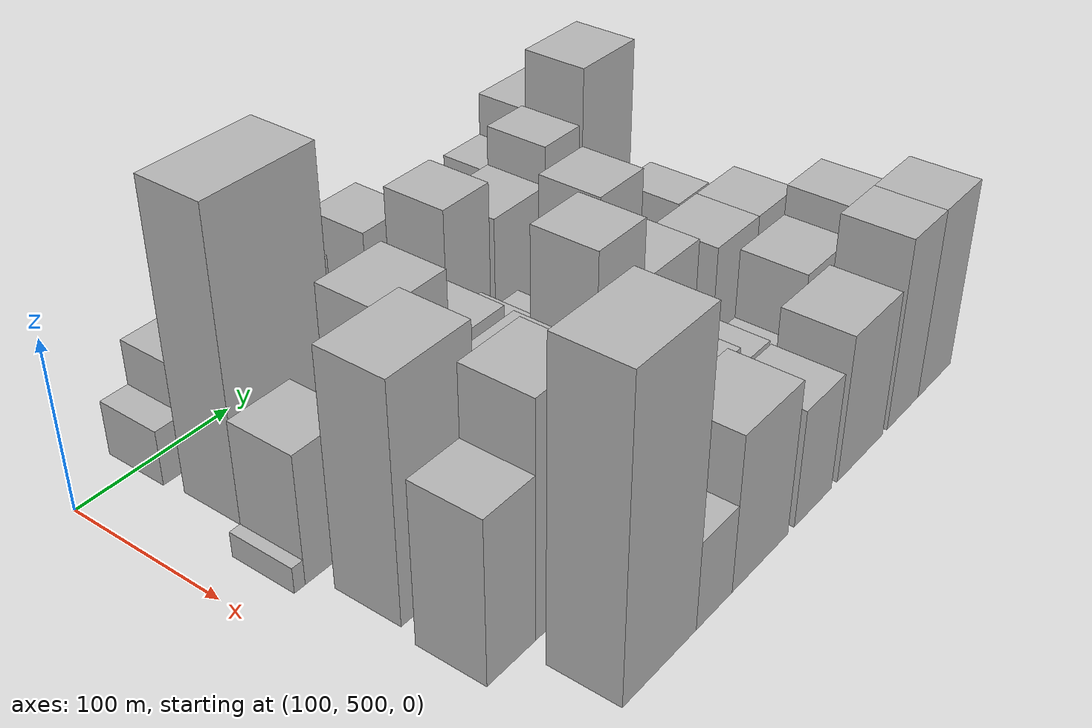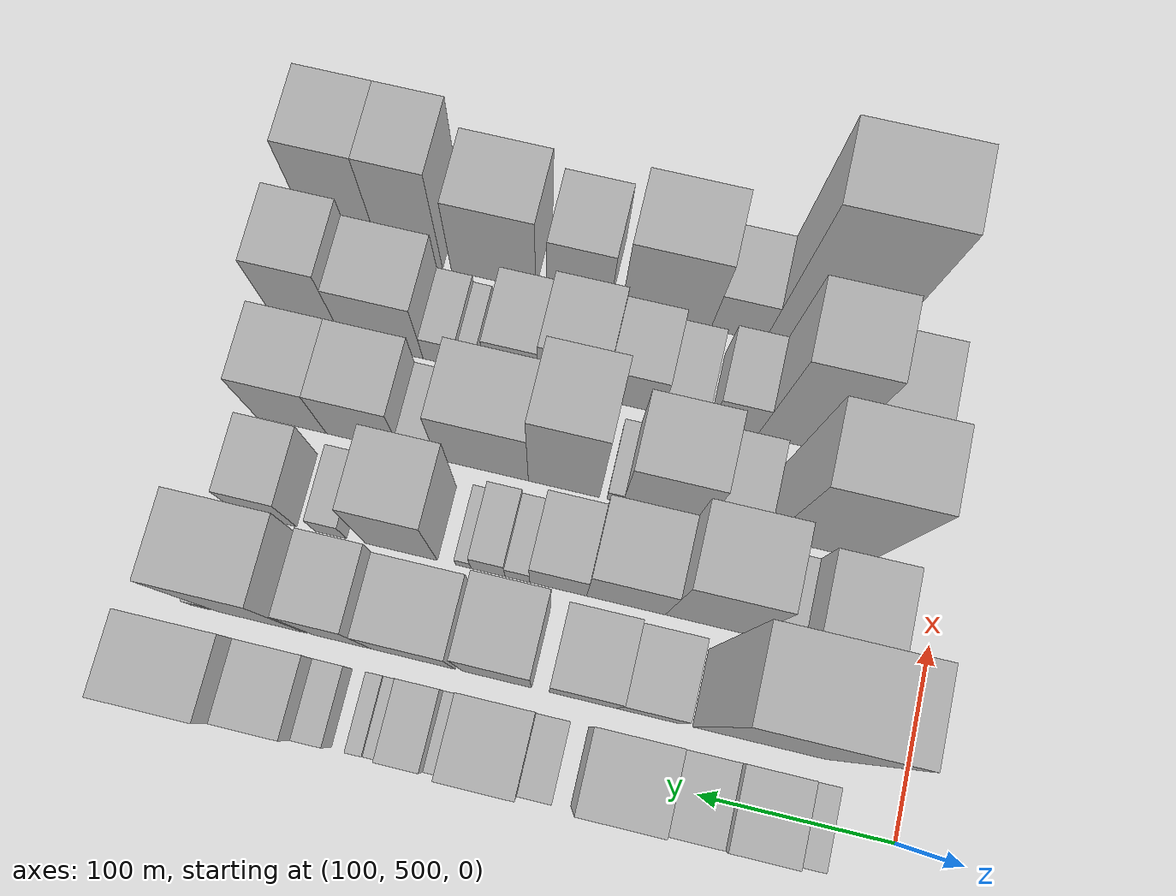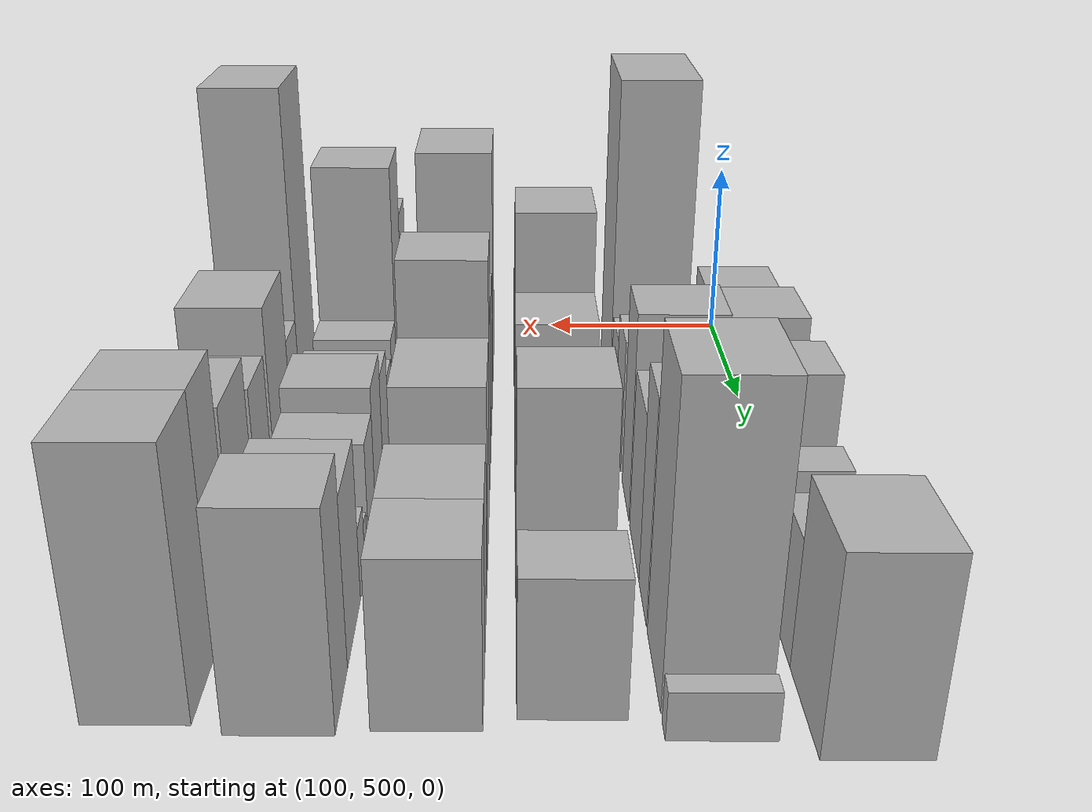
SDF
<sdf version="1.6">
 <world name="default">
  <model name="building_45">
   <static>1</static>
   <pose>100.0000 547.0188 0 0.000000 0.000000 0.000000</pose>
   <link name="link">
    <pose>0 0 16.50 0 0 0</pose>
    <collision name="collision"><geometry><box><size>40.0000 17.7548 33.0000</size></box></geometry></collision>
    <visual name="visual">
     <cast_shadows>0</cast_shadows>
     <geometry><box><size>40.0000 17.7548 33.0000</size></box></geometry>
     <material>
      <script>
       <uri>model://HANNAS_wall/materials/scripts</uri>
       <uri>model://HANNAS_wall/materials/textures</uri>
       <name>vrc/HANNAS_wall</name>
      </script>
     </material>
    </visual>
   </link>
  </model>
  <model name="building_46">
   <static>1</static>
   <pose>100.0000 572.5653 0 0.000000 0.000000 0.000000</pose>
   <link name="link">
    <pose>0 0 30.00 0 0 0</pose>
    <collision name="collision"><geometry><box><size>40.0000 33.3383 60.0000</size></box></geometry></collision>
    <visual name="visual">
     <cast_shadows>0</cast_shadows>
     <geometry><box><size>40.0000 33.3383 60.0000</size></box></geometry>
     <material>
      <script>
       <uri>model://HANNAS_wall/materials/scripts</uri>
       <uri>model://HANNAS_wall/materials/textures</uri>
       <name>vrc/HANNAS_wall</name>
      </script>
     </material>
    </visual>
   </link>
  </model>
  <model name="building_47">
   <static>1</static>
   <pose>100.0000 603.7695 0 0.000000 0.000000 0.000000</pose>
   <link name="link">
    <pose>0 0 25.50 0 0 0</pose>
    <collision name="collision"><geometry><box><size>40.0000 29.0700 51.0000</size></box></geometry></collision>
    <visual name="visual">
     <cast_shadows>0</cast_shadows>
     <geometry><box><size>40.0000 29.0700 51.0000</size></box></geometry>
     <material>
      <script>
       <uri>model://HANNAS_wall/materials/scripts</uri>
       <uri>model://HANNAS_wall/materials/textures</uri>
       <name>vrc/HANNAS_wall</name>
      </script>
     </material>
    </visual>
   </link>
  </model>
  <model name="building_48">
   <static>1</static>
   <pose>100.0000 639.3489 0 0.000000 0.000000 0.000000</pose>
   <link name="link">
    <pose>0 0 36.00 0 0 0</pose>
    <collision name="collision"><geometry><box><size>40.0000 42.0888 72.0000</size></box></geometry></collision>
    <visual name="visual">
     <cast_shadows>0</cast_shadows>
     <geometry><box><size>40.0000 42.0888 72.0000</size></box></geometry>
     <material>
      <script>
       <uri>model://HANNAS_wall/materials/scripts</uri>
       <uri>model://HANNAS_wall/materials/textures</uri>
       <name>vrc/HANNAS_wall</name>
      </script>
     </material>
    </visual>
   </link>
  </model>
  <model name="building_49">
   <static>1</static>
   <pose>100.0000 678.9602 0 0.000000 0.000000 0.000000</pose>
   <link name="link">
    <pose>0 0 15.00 0 0 0</pose>
    <collision name="collision"><geometry><box><size>40.0000 17.1336 30.0000</size></box></geometry></collision>
    <visual name="visual">
     <cast_shadows>0</cast_shadows>
     <geometry><box><size>40.0000 17.1336 30.0000</size></box></geometry>
     <material>
      <script>
       <uri>model://HANNAS_wall/materials/scripts</uri>
       <uri>model://HANNAS_wall/materials/textures</uri>
       <name>vrc/HANNAS_wall</name>
      </script>
     </material>
    </visual>
   </link>
  </model>
  <model name="building_50">
   <static>1</static>
   <pose>100.0000 706.3037 0 0.000000 0.000000 0.000000</pose>
   <link name="link">
    <pose>0 0 36.00 0 0 0</pose>
    <collision name="collision"><geometry><box><size>40.0000 37.5535 72.0000</size></box></geometry></collision>
    <visual name="visual">
     <cast_shadows>0</cast_shadows>
     <geometry><box><size>40.0000 37.5535 72.0000</size></box></geometry>
     <material>
      <script>
       <uri>model://HANNAS_wall/materials/scripts</uri>
       <uri>model://HANNAS_wall/materials/textures</uri>
       <name>vrc/HANNAS_wall</name>
      </script>
     </material>
    </visual>
   </link>
  </model>
  <model name="building_51">
   <static>1</static>
   <pose>100.0000 729.7993 0 0.000000 0.000000 0.000000</pose>
   <link name="link">
    <pose>0 0 10.50 0 0 0</pose>
    <collision name="collision"><geometry><box><size>40.0000 9.4378 21.0000</size></box></geometry></collision>
    <visual name="visual">
     <cast_shadows>0</cast_shadows>
     <geometry><box><size>40.0000 9.4378 21.0000</size></box></geometry>
     <material>
      <script>
       <uri>model://HANNAS_wall/materials/scripts</uri>
       <uri>model://HANNAS_wall/materials/textures</uri>
       <name>vrc/HANNAS_wall</name>
      </script>
     </material>
    </visual>
   </link>
  </model>
  <model name="building_52">
   <static>1</static>
   <pose>100.0000 745.5802 0 0.000000 0.000000 0.000000</pose>
   <link name="link">
    <pose>0 0 21.00 0 0 0</pose>
    <collision name="collision"><geometry><box><size>40.0000 22.1240 42.0000</size></box></geometry></collision>
    <visual name="visual">
     <cast_shadows>0</cast_shadows>
     <geometry><box><size>40.0000 22.1240 42.0000</size></box></geometry>
     <material>
      <script>
       <uri>model://HANNAS_wall/materials/scripts</uri>
       <uri>model://HANNAS_wall/materials/textures</uri>
       <name>vrc/HANNAS_wall</name>
      </script>
     </material>
    </visual>
   </link>
  </model>
  <model name="building_53">
   <static>1</static>
   <pose>100.0000 760.9786 0 0.000000 0.000000 0.000000</pose>
   <link name="link">
    <pose>0 0 9.00 0 0 0</pose>
    <collision name="collision"><geometry><box><size>40.0000 8.6729 18.0000</size></box></geometry></collision>
    <visual name="visual">
     <cast_shadows>0</cast_shadows>
     <geometry><box><size>40.0000 8.6729 18.0000</size></box></geometry>
     <material>
      <script>
       <uri>model://HANNAS_wall/materials/scripts</uri>
       <uri>model://HANNAS_wall/materials/textures</uri>
       <name>vrc/HANNAS_wall</name>
      </script>
     </material>
    </visual>
   </link>
  </model>
  <model name="building_54">
   <static>1</static>
   <pose>100.0000 769.6491 0 0.000000 0.000000 0.000000</pose>
   <link name="link">
    <pose>0 0 10.50 0 0 0</pose>
    <collision name="collision"><geometry><box><size>40.0000 8.6680 21.0000</size></box></geometry></collision>
    <visual name="visual">
     <cast_shadows>0</cast_shadows>
     <geometry><box><size>40.0000 8.6680 21.0000</size></box></geometry>
     <material>
      <script>
       <uri>model://HANNAS_wall/materials/scripts</uri>
       <uri>model://HANNAS_wall/materials/textures</uri>
       <name>vrc/HANNAS_wall</name>
      </script>
     </material>
    </visual>
   </link>
  </model>
  <model name="building_55">
   <static>1</static>
   <pose>100.0000 791.7170 0 0.000000 0.000000 0.000000</pose>
   <link name="link">
    <pose>0 0 15.00 0 0 0</pose>
    <collision name="collision"><geometry><box><size>40.0000 15.4677 30.0000</size></box></geometry></collision>
    <visual name="visual">
     <cast_shadows>0</cast_shadows>
     <geometry><box><size>40.0000 15.4677 30.0000</size></box></geometry>
     <material>
      <script>
       <uri>model://HANNAS_wall/materials/scripts</uri>
       <uri>model://HANNAS_wall/materials/textures</uri>
       <name>vrc/HANNAS_wall</name>
      </script>
     </material>
    </visual>
   </link>
  </model>
  <model name="building_56">
   <static>1</static>
   <pose>100.0000 816.1798 0 0.000000 0.000000 0.000000</pose>
   <link name="link">
    <pose>0 0 28.50 0 0 0</pose>
    <collision name="collision"><geometry><box><size>40.0000 33.4580 57.0000</size></box></geometry></collision>
    <visual name="visual">
     <cast_shadows>0</cast_shadows>
     <geometry><box><size>40.0000 33.4580 57.0000</size></box></geometry>
     <material>
      <script>
       <uri>model://HANNAS_wall/materials/scripts</uri>
       <uri>model://HANNAS_wall/materials/textures</uri>
       <name>vrc/HANNAS_wall</name>
      </script>
     </material>
    </visual>
   </link>
  </model>
  <model name="building_57">
   <static>1</static>
   <pose>100.0000 857.4980 0 0.000000 0.000000 0.000000</pose>
   <link name="link">
    <pose>0 0 42.00 0 0 0</pose>
    <collision name="collision"><geometry><box><size>40.0000 49.1783 84.0000</size></box></geometry></collision>
    <visual name="visual">
     <cast_shadows>0</cast_shadows>
     <geometry><box><size>40.0000 49.1783 84.0000</size></box></geometry>
     <material>
      <script>
       <uri>model://HANNAS_wall/materials/scripts</uri>
       <uri>model://HANNAS_wall/materials/textures</uri>
       <name>vrc/HANNAS_wall</name>
      </script>
     </material>
    </visual>
   </link>
  </model>
  <model name="building_92">
   <static>1</static>
   <pose>152.0000 575.1281 0 0.000000 0.000000 0.000000</pose>
   <link name="link">
    <pose>0 0 88.50 0 0 0</pose>
    <collision name="collision"><geometry><box><size>40.0000 68.4970 177.0000</size></box></geometry></collision>
    <visual name="visual">
     <cast_shadows>0</cast_shadows>
     <geometry><box><size>40.0000 68.4970 177.0000</size></box></geometry>
     <material>
      <script>
       <uri>model://HANNAS_wall/materials/scripts</uri>
       <uri>model://HANNAS_wall/materials/textures</uri>
       <name>vrc/HANNAS_wall</name>
      </script>
     </material>
    </visual>
   </link>
  </model>
  <model name="building_93">
   <static>1</static>
   <pose>152.0000 632.5283 0 0.000000 0.000000 0.000000</pose>
   <link name="link">
    <pose>0 0 27.00 0 0 0</pose>
    <collision name="collision"><geometry><box><size>40.0000 32.3034 54.0000</size></box></geometry></collision>
    <visual name="visual">
     <cast_shadows>0</cast_shadows>
     <geometry><box><size>40.0000 32.3034 54.0000</size></box></geometry>
     <material>
      <script>
       <uri>model://HANNAS_wall/materials/scripts</uri>
       <uri>model://HANNAS_wall/materials/textures</uri>
       <name>vrc/HANNAS_wall</name>
      </script>
     </material>
    </visual>
   </link>
  </model>
  <model name="building_94">
   <static>1</static>
   <pose>152.0000 666.2428 0 0.000000 0.000000 0.000000</pose>
   <link name="link">
    <pose>0 0 34.50 0 0 0</pose>
    <collision name="collision"><geometry><box><size>40.0000 35.1256 69.0000</size></box></geometry></collision>
    <visual name="visual">
     <cast_shadows>0</cast_shadows>
     <geometry><box><size>40.0000 35.1256 69.0000</size></box></geometry>
     <material>
      <script>
       <uri>model://HANNAS_wall/materials/scripts</uri>
       <uri>model://HANNAS_wall/materials/textures</uri>
       <name>vrc/HANNAS_wall</name>
      </script>
     </material>
    </visual>
   </link>
  </model>
  <model name="building_95">
   <static>1</static>
   <pose>152.0000 710.8497 0 0.000000 0.000000 0.000000</pose>
   <link name="link">
    <pose>0 0 51.00 0 0 0</pose>
    <collision name="collision"><geometry><box><size>40.0000 36.0883 102.0000</size></box></geometry></collision>
    <visual name="visual">
     <cast_shadows>0</cast_shadows>
     <geometry><box><size>40.0000 36.0883 102.0000</size></box></geometry>
     <material>
      <script>
       <uri>model://HANNAS_wall/materials/scripts</uri>
       <uri>model://HANNAS_wall/materials/textures</uri>
       <name>vrc/HANNAS_wall</name>
      </script>
     </material>
    </visual>
   </link>
  </model>
  <model name="building_96">
   <static>1</static>
   <pose>152.0000 754.9774 0 0.000000 0.000000 0.000000</pose>
   <link name="link">
    <pose>0 0 39.00 0 0 0</pose>
    <collision name="collision"><geometry><box><size>40.0000 44.1670 78.0000</size></box></geometry></collision>
    <visual name="visual">
     <cast_shadows>0</cast_shadows>
     <geometry><box><size>40.0000 44.1670 78.0000</size></box></geometry>
     <material>
      <script>
       <uri>model://HANNAS_wall/materials/scripts</uri>
       <uri>model://HANNAS_wall/materials/textures</uri>
       <name>vrc/HANNAS_wall</name>
      </script>
     </material>
    </visual>
   </link>
  </model>
  <model name="building_97">
   <static>1</static>
   <pose>152.0000 792.6360 0 0.000000 0.000000 0.000000</pose>
   <link name="link">
    <pose>0 0 51.00 0 0 0</pose>
    <collision name="collision"><geometry><box><size>40.0000 31.1502 102.0000</size></box></geometry></collision>
    <visual name="visual">
     <cast_shadows>0</cast_shadows>
     <geometry><box><size>40.0000 31.1502 102.0000</size></box></geometry>
     <material>
      <script>
       <uri>model://HANNAS_wall/materials/scripts</uri>
       <uri>model://HANNAS_wall/materials/textures</uri>
       <name>vrc/HANNAS_wall</name>
      </script>
     </material>
    </visual>
   </link>
  </model>
  <model name="building_98">
   <static>1</static>
   <pose>152.0000 835.0107 0 0.000000 0.000000 0.000000</pose>
   <link name="link">
    <pose>0 0 67.50 0 0 0</pose>
    <collision name="collision"><geometry><box><size>40.0000 47.5992 135.0000</size></box></geometry></collision>
    <visual name="visual">
     <cast_shadows>0</cast_shadows>
     <geometry><box><size>40.0000 47.5992 135.0000</size></box></geometry>
     <material>
      <script>
       <uri>model://HANNAS_wall/materials/scripts</uri>
       <uri>model://HANNAS_wall/materials/textures</uri>
       <name>vrc/HANNAS_wall</name>
      </script>
     </material>
    </visual>
   </link>
  </model>
  <model name="building_99">
   <static>1</static>
   <pose>152.0000 867.8798 0 0.000000 0.000000 0.000000</pose>
   <link name="link">
    <pose>0 0 10.50 0 0 0</pose>
    <collision name="collision"><geometry><box><size>40.0000 10.1391 21.0000</size></box></geometry></collision>
    <visual name="visual">
     <cast_shadows>0</cast_shadows>
     <geometry><box><size>40.0000 10.1391 21.0000</size></box></geometry>
     <material>
      <script>
       <uri>model://HANNAS_wall/materials/scripts</uri>
       <uri>model://HANNAS_wall/materials/textures</uri>
       <name>vrc/HANNAS_wall</name>
      </script>
     </material>
    </visual>
   </link>
  </model>
  <model name="building_139">
   <static>1</static>
   <pose>204.0000 526.7940 0 0.000000 0.000000 0.000000</pose>
   <link name="link">
    <pose>0 0 7.50 0 0 0</pose>
    <collision name="collision"><geometry><box><size>40.0000 6.9747 15.0000</size></box></geometry></collision>
    <visual name="visual">
     <cast_shadows>0</cast_shadows>
     <geometry><box><size>40.0000 6.9747 15.0000</size></box></geometry>
     <material>
      <script>
       <uri>model://HANNAS_wall/materials/scripts</uri>
       <uri>model://HANNAS_wall/materials/textures</uri>
       <name>vrc/HANNAS_wall</name>
      </script>
     </material>
    </visual>
   </link>
  </model>
  <model name="building_140">
   <static>1</static>
   <pose>204.0000 549.9433 0 0.000000 0.000000 0.000000</pose>
   <link name="link">
    <pose>0 0 37.50 0 0 0</pose>
    <collision name="collision"><geometry><box><size>40.0000 39.3239 75.0000</size></box></geometry></collision>
    <visual name="visual">
     <cast_shadows>0</cast_shadows>
     <geometry><box><size>40.0000 39.3239 75.0000</size></box></geometry>
     <material>
      <script>
       <uri>model://HANNAS_wall/materials/scripts</uri>
       <uri>model://HANNAS_wall/materials/textures</uri>
       <name>vrc/HANNAS_wall</name>
      </script>
     </material>
    </visual>
   </link>
  </model>
  <model name="building_141">
   <static>1</static>
   <pose>204.0000 579.8510 0 0.000000 0.000000 0.000000</pose>
   <link name="link">
    <pose>0 0 19.50 0 0 0</pose>
    <collision name="collision"><geometry><box><size>40.0000 20.4914 39.0000</size></box></geometry></collision>
    <visual name="visual">
     <cast_shadows>0</cast_shadows>
     <geometry><box><size>40.0000 20.4914 39.0000</size></box></geometry>
     <material>
      <script>
       <uri>model://HANNAS_wall/materials/scripts</uri>
       <uri>model://HANNAS_wall/materials/textures</uri>
       <name>vrc/HANNAS_wall</name>
      </script>
     </material>
    </visual>
   </link>
  </model>
  <model name="building_142">
   <static>1</static>
   <pose>204.0000 612.4443 0 0.000000 0.000000 0.000000</pose>
   <link name="link">
    <pose>0 0 58.50 0 0 0</pose>
    <collision name="collision"><geometry><box><size>40.0000 44.6953 117.0000</size></box></geometry></collision>
    <visual name="visual">
     <cast_shadows>0</cast_shadows>
     <geometry><box><size>40.0000 44.6953 117.0000</size></box></geometry>
     <material>
      <script>
       <uri>model://HANNAS_wall/materials/scripts</uri>
       <uri>model://HANNAS_wall/materials/textures</uri>
       <name>vrc/HANNAS_wall</name>
      </script>
     </material>
    </visual>
   </link>
  </model>
  <model name="building_143">
   <static>1</static>
   <pose>204.0000 655.6068 0 0.000000 0.000000 0.000000</pose>
   <link name="link">
    <pose>0 0 37.50 0 0 0</pose>
    <collision name="collision"><geometry><box><size>40.0000 41.6296 75.0000</size></box></geometry></collision>
    <visual name="visual">
     <cast_shadows>0</cast_shadows>
     <geometry><box><size>40.0000 41.6296 75.0000</size></box></geometry>
     <material>
      <script>
       <uri>model://HANNAS_wall/materials/scripts</uri>
       <uri>model://HANNAS_wall/materials/textures</uri>
       <name>vrc/HANNAS_wall</name>
      </script>
     </material>
    </visual>
   </link>
  </model>
  <model name="building_144">
   <static>1</static>
   <pose>204.0000 691.4340 0 0.000000 0.000000 0.000000</pose>
   <link name="link">
    <pose>0 0 25.50 0 0 0</pose>
    <collision name="collision"><geometry><box><size>40.0000 30.0250 51.0000</size></box></geometry></collision>
    <visual name="visual">
     <cast_shadows>0</cast_shadows>
     <geometry><box><size>40.0000 30.0250 51.0000</size></box></geometry>
     <material>
      <script>
       <uri>model://HANNAS_wall/materials/scripts</uri>
       <uri>model://HANNAS_wall/materials/textures</uri>
       <name>vrc/HANNAS_wall</name>
      </script>
     </material>
    </visual>
   </link>
  </model>
  <model name="building_145">
   <static>1</static>
   <pose>204.0000 713.0068 0 0.000000 0.000000 0.000000</pose>
   <link name="link">
    <pose>0 0 13.50 0 0 0</pose>
    <collision name="collision"><geometry><box><size>40.0000 13.1206 27.0000</size></box></geometry></collision>
    <visual name="visual">
     <cast_shadows>0</cast_shadows>
     <geometry><box><size>40.0000 13.1206 27.0000</size></box></geometry>
     <material>
      <script>
       <uri>model://HANNAS_wall/materials/scripts</uri>
       <uri>model://HANNAS_wall/materials/textures</uri>
       <name>vrc/HANNAS_wall</name>
      </script>
     </material>
    </visual>
   </link>
  </model>
  <model name="building_146">
   <static>1</static>
   <pose>204.0000 728.5701 0 0.000000 0.000000 0.000000</pose>
   <link name="link">
    <pose>0 0 18.00 0 0 0</pose>
    <collision name="collision"><geometry><box><size>40.0000 18.0059 36.0000</size></box></geometry></collision>
    <visual name="visual">
     <cast_shadows>0</cast_shadows>
     <geometry><box><size>40.0000 18.0059 36.0000</size></box></geometry>
     <material>
      <script>
       <uri>model://HANNAS_wall/materials/scripts</uri>
       <uri>model://HANNAS_wall/materials/textures</uri>
       <name>vrc/HANNAS_wall</name>
      </script>
     </material>
    </visual>
   </link>
  </model>
  <model name="building_147">
   <static>1</static>
   <pose>204.0000 741.6654 0 0.000000 0.000000 0.000000</pose>
   <link name="link">
    <pose>0 0 9.00 0 0 0</pose>
    <collision name="collision"><geometry><box><size>40.0000 8.1848 18.0000</size></box></geometry></collision>
    <visual name="visual">
     <cast_shadows>0</cast_shadows>
     <geometry><box><size>40.0000 8.1848 18.0000</size></box></geometry>
     <material>
      <script>
       <uri>model://HANNAS_wall/materials/scripts</uri>
       <uri>model://HANNAS_wall/materials/textures</uri>
       <name>vrc/HANNAS_wall</name>
      </script>
     </material>
    </visual>
   </link>
  </model>
  <model name="building_148">
   <static>1</static>
   <pose>204.0000 775.1794 0 0.000000 0.000000 0.000000</pose>
   <link name="link">
    <pose>0 0 49.50 0 0 0</pose>
    <collision name="collision"><geometry><box><size>40.0000 38.8433 99.0000</size></box></geometry></collision>
    <visual name="visual">
     <cast_shadows>0</cast_shadows>
     <geometry><box><size>40.0000 38.8433 99.0000</size></box></geometry>
     <material>
      <script>
       <uri>model://HANNAS_wall/materials/scripts</uri>
       <uri>model://HANNAS_wall/materials/textures</uri>
       <name>vrc/HANNAS_wall</name>
      </script>
     </material>
    </visual>
   </link>
  </model>
  <model name="building_149">
   <static>1</static>
   <pose>204.0000 813.0907 0 0.000000 0.000000 0.000000</pose>
   <link name="link">
    <pose>0 0 16.50 0 0 0</pose>
    <collision name="collision"><geometry><box><size>40.0000 16.9793 33.0000</size></box></geometry></collision>
    <visual name="visual">
     <cast_shadows>0</cast_shadows>
     <geometry><box><size>40.0000 16.9793 33.0000</size></box></geometry>
     <material>
      <script>
       <uri>model://HANNAS_wall/materials/scripts</uri>
       <uri>model://HANNAS_wall/materials/textures</uri>
       <name>vrc/HANNAS_wall</name>
      </script>
     </material>
    </visual>
   </link>
  </model>
  <model name="building_150">
   <static>1</static>
   <pose>204.0000 846.9965 0 0.000000 0.000000 0.000000</pose>
   <link name="link">
    <pose>0 0 30.00 0 0 0</pose>
    <collision name="collision"><geometry><box><size>40.0000 30.8322 60.0000</size></box></geometry></collision>
    <visual name="visual">
     <cast_shadows>0</cast_shadows>
     <geometry><box><size>40.0000 30.8322 60.0000</size></box></geometry>
     <material>
      <script>
       <uri>model://HANNAS_wall/materials/scripts</uri>
       <uri>model://HANNAS_wall/materials/textures</uri>
       <name>vrc/HANNAS_wall</name>
      </script>
     </material>
    </visual>
   </link>
  </model>
  <model name="building_191">
   <static>1</static>
   <pose>256.0000 563.5761 0 0.000000 0.000000 0.000000</pose>
   <link name="link">
    <pose>0 0 67.50 0 0 0</pose>
    <collision name="collision"><geometry><box><size>40.0000 53.2340 135.0000</size></box></geometry></collision>
    <visual name="visual">
     <cast_shadows>0</cast_shadows>
     <geometry><box><size>40.0000 53.2340 135.0000</size></box></geometry>
     <material>
      <script>
       <uri>model://HANNAS_wall/materials/scripts</uri>
       <uri>model://HANNAS_wall/materials/textures</uri>
       <name>vrc/HANNAS_wall</name>
      </script>
     </material>
    </visual>
   </link>
  </model>
  <model name="building_192">
   <static>1</static>
   <pose>256.0000 610.5573 0 0.000000 0.000000 0.000000</pose>
   <link name="link">
    <pose>0 0 24.00 0 0 0</pose>
    <collision name="collision"><geometry><box><size>40.0000 26.7284 48.0000</size></box></geometry></collision>
    <visual name="visual">
     <cast_shadows>0</cast_shadows>
     <geometry><box><size>40.0000 26.7284 48.0000</size></box></geometry>
     <material>
      <script>
       <uri>model://HANNAS_wall/materials/scripts</uri>
       <uri>model://HANNAS_wall/materials/textures</uri>
       <name>vrc/HANNAS_wall</name>
      </script>
     </material>
    </visual>
   </link>
  </model>
  <model name="building_193">
   <static>1</static>
   <pose>256.0000 646.3887 0 0.000000 0.000000 0.000000</pose>
   <link name="link">
    <pose>0 0 40.50 0 0 0</pose>
    <collision name="collision"><geometry><box><size>40.0000 44.9344 81.0000</size></box></geometry></collision>
    <visual name="visual">
     <cast_shadows>0</cast_shadows>
     <geometry><box><size>40.0000 44.9344 81.0000</size></box></geometry>
     <material>
      <script>
       <uri>model://HANNAS_wall/materials/scripts</uri>
       <uri>model://HANNAS_wall/materials/textures</uri>
       <name>vrc/HANNAS_wall</name>
      </script>
     </material>
    </visual>
   </link>
  </model>
  <model name="building_194">
   <static>1</static>
   <pose>256.0000 673.1726 0 0.000000 0.000000 0.000000</pose>
   <link name="link">
    <pose>0 0 9.00 0 0 0</pose>
    <collision name="collision"><geometry><box><size>40.0000 8.6335 18.0000</size></box></geometry></collision>
    <visual name="visual">
     <cast_shadows>0</cast_shadows>
     <geometry><box><size>40.0000 8.6335 18.0000</size></box></geometry>
     <material>
      <script>
       <uri>model://HANNAS_wall/materials/scripts</uri>
       <uri>model://HANNAS_wall/materials/textures</uri>
       <name>vrc/HANNAS_wall</name>
      </script>
     </material>
    </visual>
   </link>
  </model>
  <model name="building_195">
   <static>1</static>
   <pose>256.0000 700.6495 0 0.000000 0.000000 0.000000</pose>
   <link name="link">
    <pose>0 0 61.50 0 0 0</pose>
    <collision name="collision"><geometry><box><size>40.0000 38.3202 123.0000</size></box></geometry></collision>
    <visual name="visual">
     <cast_shadows>0</cast_shadows>
     <geometry><box><size>40.0000 38.3202 123.0000</size></box></geometry>
     <material>
      <script>
       <uri>model://HANNAS_wall/materials/scripts</uri>
       <uri>model://HANNAS_wall/materials/textures</uri>
       <name>vrc/HANNAS_wall</name>
      </script>
     </material>
    </visual>
   </link>
  </model>
  <model name="building_196">
   <static>1</static>
   <pose>256.0000 744.6221 0 0.000000 0.000000 0.000000</pose>
   <link name="link">
    <pose>0 0 43.50 0 0 0</pose>
    <collision name="collision"><geometry><box><size>40.0000 49.6250 87.0000</size></box></geometry></collision>
    <visual name="visual">
     <cast_shadows>0</cast_shadows>
     <geometry><box><size>40.0000 49.6250 87.0000</size></box></geometry>
     <material>
      <script>
       <uri>model://HANNAS_wall/materials/scripts</uri>
       <uri>model://HANNAS_wall/materials/textures</uri>
       <name>vrc/HANNAS_wall</name>
      </script>
     </material>
    </visual>
   </link>
  </model>
  <model name="building_197">
   <static>1</static>
   <pose>256.0000 779.1138 0 0.000000 0.000000 0.000000</pose>
   <link name="link">
    <pose>0 0 16.50 0 0 0</pose>
    <collision name="collision"><geometry><box><size>40.0000 19.3584 33.0000</size></box></geometry></collision>
    <visual name="visual">
     <cast_shadows>0</cast_shadows>
     <geometry><box><size>40.0000 19.3584 33.0000</size></box></geometry>
     <material>
      <script>
       <uri>model://HANNAS_wall/materials/scripts</uri>
       <uri>model://HANNAS_wall/materials/textures</uri>
       <name>vrc/HANNAS_wall</name>
      </script>
     </material>
    </visual>
   </link>
  </model>
  <model name="building_198">
   <static>1</static>
   <pose>256.0000 809.3354 0 0.000000 0.000000 0.000000</pose>
   <link name="link">
    <pose>0 0 36.00 0 0 0</pose>
    <collision name="collision"><geometry><box><size>40.0000 41.0849 72.0000</size></box></geometry></collision>
    <visual name="visual">
     <cast_shadows>0</cast_shadows>
     <geometry><box><size>40.0000 41.0849 72.0000</size></box></geometry>
     <material>
      <script>
       <uri>model://HANNAS_wall/materials/scripts</uri>
       <uri>model://HANNAS_wall/materials/textures</uri>
       <name>vrc/HANNAS_wall</name>
      </script>
     </material>
    </visual>
   </link>
  </model>
  <model name="building_199">
   <static>1</static>
   <pose>256.0000 849.2167 0 0.000000 0.000000 0.000000</pose>
   <link name="link">
    <pose>0 0 36.00 0 0 0</pose>
    <collision name="collision"><geometry><box><size>40.0000 38.6776 72.0000</size></box></geometry></collision>
    <visual name="visual">
     <cast_shadows>0</cast_shadows>
     <geometry><box><size>40.0000 38.6776 72.0000</size></box></geometry>
     <material>
      <script>
       <uri>model://HANNAS_wall/materials/scripts</uri>
       <uri>model://HANNAS_wall/materials/textures</uri>
       <name>vrc/HANNAS_wall</name>
      </script>
     </material>
    </visual>
   </link>
  </model>
  <model name="building_242">
   <static>1</static>
   <pose>308.0000 549.5971 0 0.000000 0.000000 0.000000</pose>
   <link name="link">
    <pose>0 0 46.50 0 0 0</pose>
    <collision name="collision"><geometry><box><size>40.0000 33.7133 93.0000</size></box></geometry></collision>
    <visual name="visual">
     <cast_shadows>0</cast_shadows>
     <geometry><box><size>40.0000 33.7133 93.0000</size></box></geometry>
     <material>
      <script>
       <uri>model://HANNAS_wall/materials/scripts</uri>
       <uri>model://HANNAS_wall/materials/textures</uri>
       <name>vrc/HANNAS_wall</name>
      </script>
     </material>
    </visual>
   </link>
  </model>
  <model name="building_243">
   <static>1</static>
   <pose>308.0000 587.0643 0 0.000000 0.000000 0.000000</pose>
   <link name="link">
    <pose>0 0 66.00 0 0 0</pose>
    <collision name="collision"><geometry><box><size>40.0000 41.2210 132.0000</size></box></geometry></collision>
    <visual name="visual">
     <cast_shadows>0</cast_shadows>
     <geometry><box><size>40.0000 41.2210 132.0000</size></box></geometry>
     <material>
      <script>
       <uri>model://HANNAS_wall/materials/scripts</uri>
       <uri>model://HANNAS_wall/materials/textures</uri>
       <name>vrc/HANNAS_wall</name>
      </script>
     </material>
    </visual>
   </link>
  </model>
  <model name="building_244">
   <static>1</static>
   <pose>308.0000 620.4458 0 0.000000 0.000000 0.000000</pose>
   <link name="link">
    <pose>0 0 24.00 0 0 0</pose>
    <collision name="collision"><geometry><box><size>40.0000 25.5420 48.0000</size></box></geometry></collision>
    <visual name="visual">
     <cast_shadows>0</cast_shadows>
     <geometry><box><size>40.0000 25.5420 48.0000</size></box></geometry>
     <material>
      <script>
       <uri>model://HANNAS_wall/materials/scripts</uri>
       <uri>model://HANNAS_wall/materials/textures</uri>
       <name>vrc/HANNAS_wall</name>
      </script>
     </material>
    </visual>
   </link>
  </model>
  <model name="building_245">
   <static>1</static>
   <pose>308.0000 648.3953 0 0.000000 0.000000 0.000000</pose>
   <link name="link">
    <pose>0 0 19.50 0 0 0</pose>
    <collision name="collision"><geometry><box><size>40.0000 22.3569 39.0000</size></box></geometry></collision>
    <visual name="visual">
     <cast_shadows>0</cast_shadows>
     <geometry><box><size>40.0000 22.3569 39.0000</size></box></geometry>
     <material>
      <script>
       <uri>model://HANNAS_wall/materials/scripts</uri>
       <uri>model://HANNAS_wall/materials/textures</uri>
       <name>vrc/HANNAS_wall</name>
      </script>
     </material>
    </visual>
   </link>
  </model>
  <model name="building_246">
   <static>1</static>
   <pose>308.0000 674.9612 0 0.000000 0.000000 0.000000</pose>
   <link name="link">
    <pose>0 0 27.00 0 0 0</pose>
    <collision name="collision"><geometry><box><size>40.0000 30.7750 54.0000</size></box></geometry></collision>
    <visual name="visual">
     <cast_shadows>0</cast_shadows>
     <geometry><box><size>40.0000 30.7750 54.0000</size></box></geometry>
     <material>
      <script>
       <uri>model://HANNAS_wall/materials/scripts</uri>
       <uri>model://HANNAS_wall/materials/textures</uri>
       <name>vrc/HANNAS_wall</name>
      </script>
     </material>
    </visual>
   </link>
  </model>
  <model name="building_247">
   <static>1</static>
   <pose>308.0000 708.7902 0 0.000000 0.000000 0.000000</pose>
   <link name="link">
    <pose>0 0 33.00 0 0 0</pose>
    <collision name="collision"><geometry><box><size>40.0000 36.8830 66.0000</size></box></geometry></collision>
    <visual name="visual">
     <cast_shadows>0</cast_shadows>
     <geometry><box><size>40.0000 36.8830 66.0000</size></box></geometry>
     <material>
      <script>
       <uri>model://HANNAS_wall/materials/scripts</uri>
       <uri>model://HANNAS_wall/materials/textures</uri>
       <name>vrc/HANNAS_wall</name>
      </script>
     </material>
    </visual>
   </link>
  </model>
  <model name="building_248">
   <static>1</static>
   <pose>308.0000 741.7607 0 0.000000 0.000000 0.000000</pose>
   <link name="link">
    <pose>0 0 27.00 0 0 0</pose>
    <collision name="collision"><geometry><box><size>40.0000 29.0581 54.0000</size></box></geometry></collision>
    <visual name="visual">
     <cast_shadows>0</cast_shadows>
     <geometry><box><size>40.0000 29.0581 54.0000</size></box></geometry>
     <material>
      <script>
       <uri>model://HANNAS_wall/materials/scripts</uri>
       <uri>model://HANNAS_wall/materials/textures</uri>
       <name>vrc/HANNAS_wall</name>
      </script>
     </material>
    </visual>
   </link>
  </model>
  <model name="building_249">
   <static>1</static>
   <pose>308.0000 766.3651 0 0.000000 0.000000 0.000000</pose>
   <link name="link">
    <pose>0 0 12.00 0 0 0</pose>
    <collision name="collision"><geometry><box><size>40.0000 10.1506 24.0000</size></box></geometry></collision>
    <visual name="visual">
     <cast_shadows>0</cast_shadows>
     <geometry><box><size>40.0000 10.1506 24.0000</size></box></geometry>
     <material>
      <script>
       <uri>model://HANNAS_wall/materials/scripts</uri>
       <uri>model://HANNAS_wall/materials/textures</uri>
       <name>vrc/HANNAS_wall</name>
      </script>
     </material>
    </visual>
   </link>
  </model>
  <model name="building_250">
   <static>1</static>
   <pose>308.0000 780.9694 0 0.000000 0.000000 0.000000</pose>
   <link name="link">
    <pose>0 0 16.50 0 0 0</pose>
    <collision name="collision"><geometry><box><size>40.0000 19.0580 33.0000</size></box></geometry></collision>
    <visual name="visual">
     <cast_shadows>0</cast_shadows>
     <geometry><box><size>40.0000 19.0580 33.0000</size></box></geometry>
     <material>
      <script>
       <uri>model://HANNAS_wall/materials/scripts</uri>
       <uri>model://HANNAS_wall/materials/textures</uri>
       <name>vrc/HANNAS_wall</name>
      </script>
     </material>
    </visual>
   </link>
  </model>
  <model name="building_251">
   <static>1</static>
   <pose>308.0000 812.6713 0 0.000000 0.000000 0.000000</pose>
   <link name="link">
    <pose>0 0 37.50 0 0 0</pose>
    <collision name="collision"><geometry><box><size>40.0000 44.3460 75.0000</size></box></geometry></collision>
    <visual name="visual">
     <cast_shadows>0</cast_shadows>
     <geometry><box><size>40.0000 44.3460 75.0000</size></box></geometry>
     <material>
      <script>
       <uri>model://HANNAS_wall/materials/scripts</uri>
       <uri>model://HANNAS_wall/materials/textures</uri>
       <name>vrc/HANNAS_wall</name>
      </script>
     </material>
    </visual>
   </link>
  </model>
  <model name="building_252">
   <static>1</static>
   <pose>308.0000 852.9736 0 0.000000 0.000000 0.000000</pose>
   <link name="link">
    <pose>0 0 46.50 0 0 0</pose>
    <collision name="collision"><geometry><box><size>40.0000 36.2586 93.0000</size></box></geometry></collision>
    <visual name="visual">
     <cast_shadows>0</cast_shadows>
     <geometry><box><size>40.0000 36.2586 93.0000</size></box></geometry>
     <material>
      <script>
       <uri>model://HANNAS_wall/materials/scripts</uri>
       <uri>model://HANNAS_wall/materials/textures</uri>
       <name>vrc/HANNAS_wall</name>
      </script>
     </material>
    </visual>
   </link>
  </model>
  <model name="building_292">
   <static>1</static>
   <pose>360.0000 586.1545 0 0.000000 0.000000 0.000000</pose>
   <link name="link">
    <pose>0 0 87.00 0 0 0</pose>
    <collision name="collision"><geometry><box><size>40.0000 56.2477 174.0000</size></box></geometry></collision>
    <visual name="visual">
     <cast_shadows>0</cast_shadows>
     <geometry><box><size>40.0000 56.2477 174.0000</size></box></geometry>
     <material>
      <script>
       <uri>model://HANNAS_wall/materials/scripts</uri>
       <uri>model://HANNAS_wall/materials/textures</uri>
       <name>vrc/HANNAS_wall</name>
      </script>
     </material>
    </visual>
   </link>
  </model>
  <model name="building_293">
   <static>1</static>
   <pose>360.0000 629.0600 0 0.000000 0.000000 0.000000</pose>
   <link name="link">
    <pose>0 0 25.50 0 0 0</pose>
    <collision name="collision"><geometry><box><size>40.0000 29.5633 51.0000</size></box></geometry></collision>
    <visual name="visual">
     <cast_shadows>0</cast_shadows>
     <geometry><box><size>40.0000 29.5633 51.0000</size></box></geometry>
     <material>
      <script>
       <uri>model://HANNAS_wall/materials/scripts</uri>
       <uri>model://HANNAS_wall/materials/textures</uri>
       <name>vrc/HANNAS_wall</name>
      </script>
     </material>
    </visual>
   </link>
  </model>
  <model name="building_294">
   <static>1</static>
   <pose>360.0000 668.5612 0 0.000000 0.000000 0.000000</pose>
   <link name="link">
    <pose>0 0 45.00 0 0 0</pose>
    <collision name="collision"><geometry><box><size>40.0000 49.4392 90.0000</size></box></geometry></collision>
    <visual name="visual">
     <cast_shadows>0</cast_shadows>
     <geometry><box><size>40.0000 49.4392 90.0000</size></box></geometry>
     <material>
      <script>
       <uri>model://HANNAS_wall/materials/scripts</uri>
       <uri>model://HANNAS_wall/materials/textures</uri>
       <name>vrc/HANNAS_wall</name>
      </script>
     </material>
    </visual>
   </link>
  </model>
  <model name="building_295">
   <static>1</static>
   <pose>360.0000 717.1157 0 0.000000 0.000000 0.000000</pose>
   <link name="link">
    <pose>0 0 34.50 0 0 0</pose>
    <collision name="collision"><geometry><box><size>40.0000 35.6698 69.0000</size></box></geometry></collision>
    <visual name="visual">
     <cast_shadows>0</cast_shadows>
     <geometry><box><size>40.0000 35.6698 69.0000</size></box></geometry>
     <material>
      <script>
       <uri>model://HANNAS_wall/materials/scripts</uri>
       <uri>model://HANNAS_wall/materials/textures</uri>
       <name>vrc/HANNAS_wall</name>
      </script>
     </material>
    </visual>
   </link>
  </model>
  <model name="building_296">
   <static>1</static>
   <pose>360.0000 764.5273 0 0.000000 0.000000 0.000000</pose>
   <link name="link">
    <pose>0 0 43.50 0 0 0</pose>
    <collision name="collision"><geometry><box><size>40.0000 47.1536 87.0000</size></box></geometry></collision>
    <visual name="visual">
     <cast_shadows>0</cast_shadows>
     <geometry><box><size>40.0000 47.1536 87.0000</size></box></geometry>
     <material>
      <script>
       <uri>model://HANNAS_wall/materials/scripts</uri>
       <uri>model://HANNAS_wall/materials/textures</uri>
       <name>vrc/HANNAS_wall</name>
      </script>
     </material>
    </visual>
   </link>
  </model>
  <model name="building_297">
   <static>1</static>
   <pose>360.0000 810.3574 0 0.000000 0.000000 0.000000</pose>
   <link name="link">
    <pose>0 0 57.00 0 0 0</pose>
    <collision name="collision"><geometry><box><size>40.0000 34.5064 114.0000</size></box></geometry></collision>
    <visual name="visual">
     <cast_shadows>0</cast_shadows>
     <geometry><box><size>40.0000 34.5064 114.0000</size></box></geometry>
     <material>
      <script>
       <uri>model://HANNAS_wall/materials/scripts</uri>
       <uri>model://HANNAS_wall/materials/textures</uri>
       <name>vrc/HANNAS_wall</name>
      </script>
     </material>
    </visual>
   </link>
  </model>
  <model name="building_298">
   <static>1</static>
   <pose>360.0000 846.8008 0 0.000000 0.000000 0.000000</pose>
   <link name="link">
    <pose>0 0 57.00 0 0 0</pose>
    <collision name="collision"><geometry><box><size>40.0000 38.3804 114.0000</size></box></geometry></collision>
    <visual name="visual">
     <cast_shadows>0</cast_shadows>
     <geometry><box><size>40.0000 38.3804 114.0000</size></box></geometry>
     <material>
      <script>
       <uri>model://HANNAS_wall/materials/scripts</uri>
       <uri>model://HANNAS_wall/materials/textures</uri>
       <name>vrc/HANNAS_wall</name>
      </script>
     </material>
    </visual>
   </link>
  </model>
 </world>
</sdf>
